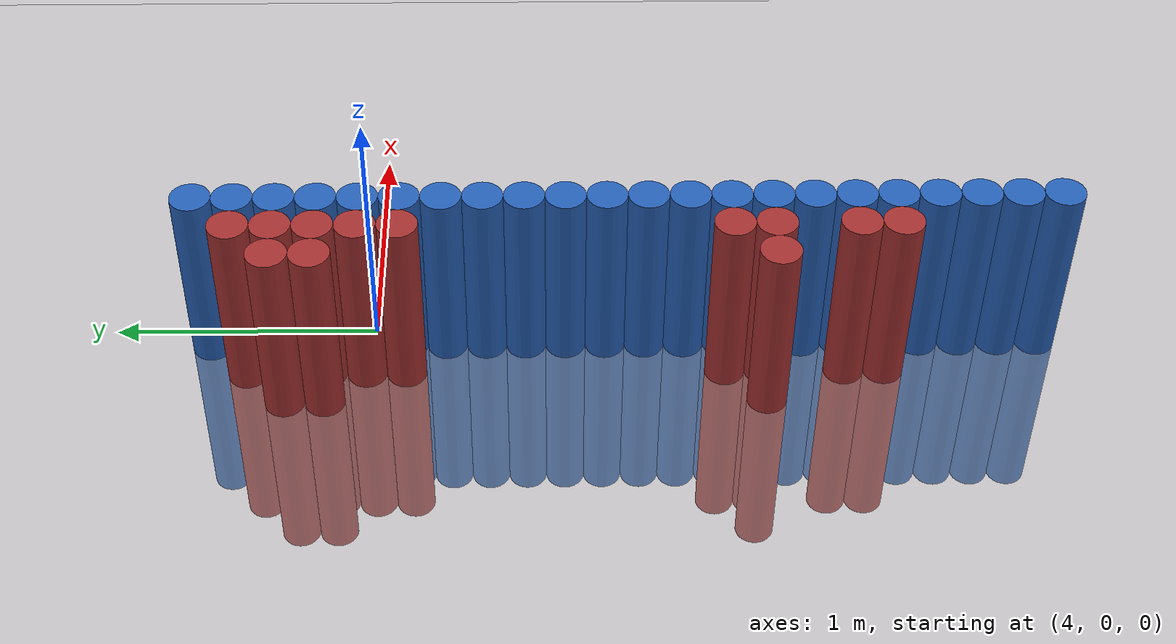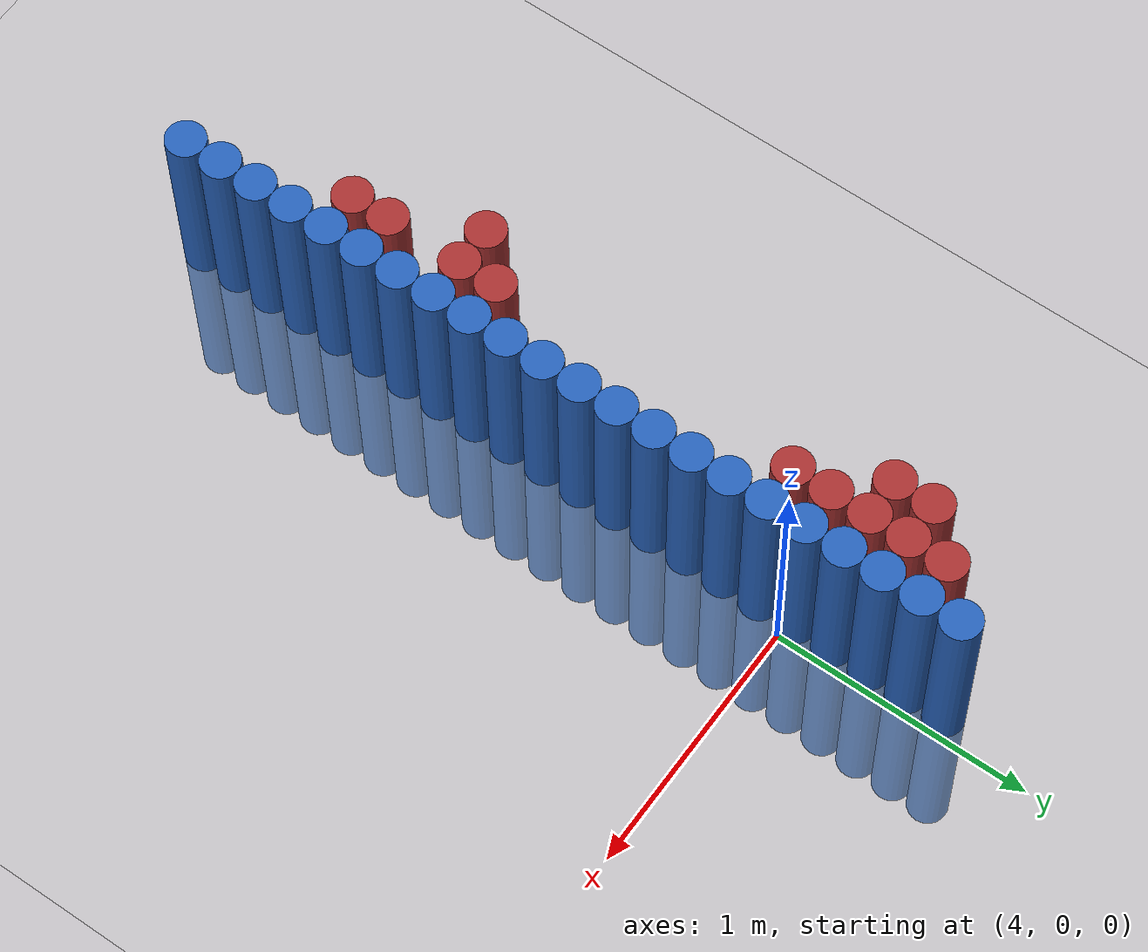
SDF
<sdf version="1.6">
 <world name="default">
  <model name="ground_plane">
   <static>1</static>
   <link name="link">
    <collision name="collision">
     <geometry><plane><normal>0 0 1</normal><size>100 100</size></plane></geometry>
     <surface><friction><ode><mu>100</mu><mu2>50</mu2></ode></friction></surface>
    </collision>
    <visual name="visual">
     <cast_shadows>0</cast_shadows>
     <geometry><plane><normal>0 0 1</normal><size>100 100</size></plane></geometry>
     <material>
      <script><uri>file://media/materials/scripts/gazebo.material</uri><name>Gazebo/Grey</name></script>
     </material>
    </visual>
   </link>
  </model>
  <model name="unit_cylinder_80">
   <static>1</static>
   <pose>3.925000 -2.525000 0.000000 0.000000 0.000000 0.000000</pose>
   <link name="link">
    <inertial>
     <mass>1</mass>
     <inertia><ixx>0.145833</ixx><ixy>0</ixy><ixz>0</ixz><iyy>0.145833</iyy><iyz>0</iyz><izz>0.125</izz></inertia>
    </inertial>
    <collision name="collision">
     <geometry><cylinder><radius>0.075000</radius><length>1.5</length></cylinder></geometry>
    </collision>
    <visual name="visual">
     <geometry><cylinder><radius>0.075000</radius><length>1.5</length></cylinder></geometry>
     <material>
      <ambient>0.152000 0.379000 0.720000 1</ambient>
      <diffuse>0.152000 0.379000 0.720000 1</diffuse>
     </material>
     <material>
      <script><name>Gazebo/Grey</name><uri>file://media/materials/scripts/gazebo.material</uri></script>
     </material>
    </visual>
   </link>
  </model>
  <model name="unit_cylinder_82">
   <static>1</static>
   <pose>3.925000 -2.375000 0.000000 0.000000 0.000000 0.000000</pose>
   <link name="link">
    <inertial>
     <mass>1</mass>
     <inertia><ixx>0.145833</ixx><ixy>0</ixy><ixz>0</ixz><iyy>0.145833</iyy><iyz>0</iyz><izz>0.125</izz></inertia>
    </inertial>
    <collision name="collision">
     <geometry><cylinder><radius>0.075000</radius><length>1.5</length></cylinder></geometry>
    </collision>
    <visual name="visual">
     <geometry><cylinder><radius>0.075000</radius><length>1.5</length></cylinder></geometry>
     <material>
      <ambient>0.152000 0.379000 0.720000 1</ambient>
      <diffuse>0.152000 0.379000 0.720000 1</diffuse>
     </material>
     <material>
      <script><name>Gazebo/Grey</name><uri>file://media/materials/scripts/gazebo.material</uri></script>
     </material>
    </visual>
   </link>
  </model>
  <model name="unit_cylinder_84">
   <static>1</static>
   <pose>3.925000 -2.225000 0.000000 0.000000 0.000000 0.000000</pose>
   <link name="link">
    <inertial>
     <mass>1</mass>
     <inertia><ixx>0.145833</ixx><ixy>0</ixy><ixz>0</ixz><iyy>0.145833</iyy><iyz>0</iyz><izz>0.125</izz></inertia>
    </inertial>
    <collision name="collision">
     <geometry><cylinder><radius>0.075000</radius><length>1.5</length></cylinder></geometry>
    </collision>
    <visual name="visual">
     <geometry><cylinder><radius>0.075000</radius><length>1.5</length></cylinder></geometry>
     <material>
      <ambient>0.152000 0.379000 0.720000 1</ambient>
      <diffuse>0.152000 0.379000 0.720000 1</diffuse>
     </material>
     <material>
      <script><name>Gazebo/Grey</name><uri>file://media/materials/scripts/gazebo.material</uri></script>
     </material>
    </visual>
   </link>
  </model>
  <model name="unit_cylinder_86">
   <static>1</static>
   <pose>3.925000 -2.075000 0.000000 0.000000 0.000000 0.000000</pose>
   <link name="link">
    <inertial>
     <mass>1</mass>
     <inertia><ixx>0.145833</ixx><ixy>0</ixy><ixz>0</ixz><iyy>0.145833</iyy><iyz>0</iyz><izz>0.125</izz></inertia>
    </inertial>
    <collision name="collision">
     <geometry><cylinder><radius>0.075000</radius><length>1.5</length></cylinder></geometry>
    </collision>
    <visual name="visual">
     <geometry><cylinder><radius>0.075000</radius><length>1.5</length></cylinder></geometry>
     <material>
      <ambient>0.152000 0.379000 0.720000 1</ambient>
      <diffuse>0.152000 0.379000 0.720000 1</diffuse>
     </material>
     <material>
      <script><name>Gazebo/Grey</name><uri>file://media/materials/scripts/gazebo.material</uri></script>
     </material>
    </visual>
   </link>
  </model>
  <model name="unit_cylinder_88">
   <static>1</static>
   <pose>3.925000 -1.925000 0.000000 0.000000 0.000000 0.000000</pose>
   <link name="link">
    <inertial>
     <mass>1</mass>
     <inertia><ixx>0.145833</ixx><ixy>0</ixy><ixz>0</ixz><iyy>0.145833</iyy><iyz>0</iyz><izz>0.125</izz></inertia>
    </inertial>
    <collision name="collision">
     <geometry><cylinder><radius>0.075000</radius><length>1.5</length></cylinder></geometry>
    </collision>
    <visual name="visual">
     <geometry><cylinder><radius>0.075000</radius><length>1.5</length></cylinder></geometry>
     <material>
      <ambient>0.152000 0.379000 0.720000 1</ambient>
      <diffuse>0.152000 0.379000 0.720000 1</diffuse>
     </material>
     <material>
      <script><name>Gazebo/Grey</name><uri>file://media/materials/scripts/gazebo.material</uri></script>
     </material>
    </visual>
   </link>
  </model>
  <model name="unit_cylinder_90">
   <static>1</static>
   <pose>3.925000 -1.775000 0.000000 0.000000 0.000000 0.000000</pose>
   <link name="link">
    <inertial>
     <mass>1</mass>
     <inertia><ixx>0.145833</ixx><ixy>0</ixy><ixz>0</ixz><iyy>0.145833</iyy><iyz>0</iyz><izz>0.125</izz></inertia>
    </inertial>
    <collision name="collision">
     <geometry><cylinder><radius>0.075000</radius><length>1.5</length></cylinder></geometry>
    </collision>
    <visual name="visual">
     <geometry><cylinder><radius>0.075000</radius><length>1.5</length></cylinder></geometry>
     <material>
      <ambient>0.152000 0.379000 0.720000 1</ambient>
      <diffuse>0.152000 0.379000 0.720000 1</diffuse>
     </material>
     <material>
      <script><name>Gazebo/Grey</name><uri>file://media/materials/scripts/gazebo.material</uri></script>
     </material>
    </visual>
   </link>
  </model>
  <model name="unit_cylinder_92">
   <static>1</static>
   <pose>3.925000 -1.625000 0.000000 0.000000 0.000000 0.000000</pose>
   <link name="link">
    <inertial>
     <mass>1</mass>
     <inertia><ixx>0.145833</ixx><ixy>0</ixy><ixz>0</ixz><iyy>0.145833</iyy><iyz>0</iyz><izz>0.125</izz></inertia>
    </inertial>
    <collision name="collision">
     <geometry><cylinder><radius>0.075000</radius><length>1.5</length></cylinder></geometry>
    </collision>
    <visual name="visual">
     <geometry><cylinder><radius>0.075000</radius><length>1.5</length></cylinder></geometry>
     <material>
      <ambient>0.152000 0.379000 0.720000 1</ambient>
      <diffuse>0.152000 0.379000 0.720000 1</diffuse>
     </material>
     <material>
      <script><name>Gazebo/Grey</name><uri>file://media/materials/scripts/gazebo.material</uri></script>
     </material>
    </visual>
   </link>
  </model>
  <model name="unit_cylinder_94">
   <static>1</static>
   <pose>3.925000 -1.475000 0.000000 0.000000 0.000000 0.000000</pose>
   <link name="link">
    <inertial>
     <mass>1</mass>
     <inertia><ixx>0.145833</ixx><ixy>0</ixy><ixz>0</ixz><iyy>0.145833</iyy><iyz>0</iyz><izz>0.125</izz></inertia>
    </inertial>
    <collision name="collision">
     <geometry><cylinder><radius>0.075000</radius><length>1.5</length></cylinder></geometry>
    </collision>
    <visual name="visual">
     <geometry><cylinder><radius>0.075000</radius><length>1.5</length></cylinder></geometry>
     <material>
      <ambient>0.152000 0.379000 0.720000 1</ambient>
      <diffuse>0.152000 0.379000 0.720000 1</diffuse>
     </material>
     <material>
      <script><name>Gazebo/Grey</name><uri>file://media/materials/scripts/gazebo.material</uri></script>
     </material>
    </visual>
   </link>
  </model>
  <model name="unit_cylinder_96">
   <static>1</static>
   <pose>3.925000 -1.325000 0.000000 0.000000 0.000000 0.000000</pose>
   <link name="link">
    <inertial>
     <mass>1</mass>
     <inertia><ixx>0.145833</ixx><ixy>0</ixy><ixz>0</ixz><iyy>0.145833</iyy><iyz>0</iyz><izz>0.125</izz></inertia>
    </inertial>
    <collision name="collision">
     <geometry><cylinder><radius>0.075000</radius><length>1.5</length></cylinder></geometry>
    </collision>
    <visual name="visual">
     <geometry><cylinder><radius>0.075000</radius><length>1.5</length></cylinder></geometry>
     <material>
      <ambient>0.152000 0.379000 0.720000 1</ambient>
      <diffuse>0.152000 0.379000 0.720000 1</diffuse>
     </material>
     <material>
      <script><name>Gazebo/Grey</name><uri>file://media/materials/scripts/gazebo.material</uri></script>
     </material>
    </visual>
   </link>
  </model>
  <model name="unit_cylinder_98">
   <static>1</static>
   <pose>3.925000 -1.175000 0.000000 0.000000 0.000000 0.000000</pose>
   <link name="link">
    <inertial>
     <mass>1</mass>
     <inertia><ixx>0.145833</ixx><ixy>0</ixy><ixz>0</ixz><iyy>0.145833</iyy><iyz>0</iyz><izz>0.125</izz></inertia>
    </inertial>
    <collision name="collision">
     <geometry><cylinder><radius>0.075000</radius><length>1.5</length></cylinder></geometry>
    </collision>
    <visual name="visual">
     <geometry><cylinder><radius>0.075000</radius><length>1.5</length></cylinder></geometry>
     <material>
      <ambient>0.152000 0.379000 0.720000 1</ambient>
      <diffuse>0.152000 0.379000 0.720000 1</diffuse>
     </material>
     <material>
      <script><name>Gazebo/Grey</name><uri>file://media/materials/scripts/gazebo.material</uri></script>
     </material>
    </visual>
   </link>
  </model>
  <model name="unit_cylinder_100">
   <static>1</static>
   <pose>3.925000 -1.025000 0.000000 0.000000 0.000000 0.000000</pose>
   <link name="link">
    <inertial>
     <mass>1</mass>
     <inertia><ixx>0.145833</ixx><ixy>0</ixy><ixz>0</ixz><iyy>0.145833</iyy><iyz>0</iyz><izz>0.125</izz></inertia>
    </inertial>
    <collision name="collision">
     <geometry><cylinder><radius>0.075000</radius><length>1.5</length></cylinder></geometry>
    </collision>
    <visual name="visual">
     <geometry><cylinder><radius>0.075000</radius><length>1.5</length></cylinder></geometry>
     <material>
      <ambient>0.152000 0.379000 0.720000 1</ambient>
      <diffuse>0.152000 0.379000 0.720000 1</diffuse>
     </material>
     <material>
      <script><name>Gazebo/Grey</name><uri>file://media/materials/scripts/gazebo.material</uri></script>
     </material>
    </visual>
   </link>
  </model>
  <model name="unit_cylinder_102">
   <static>1</static>
   <pose>3.925000 -0.875000 0.000000 0.000000 0.000000 0.000000</pose>
   <link name="link">
    <inertial>
     <mass>1</mass>
     <inertia><ixx>0.145833</ixx><ixy>0</ixy><ixz>0</ixz><iyy>0.145833</iyy><iyz>0</iyz><izz>0.125</izz></inertia>
    </inertial>
    <collision name="collision">
     <geometry><cylinder><radius>0.075000</radius><length>1.5</length></cylinder></geometry>
    </collision>
    <visual name="visual">
     <geometry><cylinder><radius>0.075000</radius><length>1.5</length></cylinder></geometry>
     <material>
      <ambient>0.152000 0.379000 0.720000 1</ambient>
      <diffuse>0.152000 0.379000 0.720000 1</diffuse>
     </material>
     <material>
      <script><name>Gazebo/Grey</name><uri>file://media/materials/scripts/gazebo.material</uri></script>
     </material>
    </visual>
   </link>
  </model>
  <model name="unit_cylinder_104">
   <static>1</static>
   <pose>3.925000 -0.725000 0.000000 0.000000 0.000000 0.000000</pose>
   <link name="link">
    <inertial>
     <mass>1</mass>
     <inertia><ixx>0.145833</ixx><ixy>0</ixy><ixz>0</ixz><iyy>0.145833</iyy><iyz>0</iyz><izz>0.125</izz></inertia>
    </inertial>
    <collision name="collision">
     <geometry><cylinder><radius>0.075000</radius><length>1.5</length></cylinder></geometry>
    </collision>
    <visual name="visual">
     <geometry><cylinder><radius>0.075000</radius><length>1.5</length></cylinder></geometry>
     <material>
      <ambient>0.152000 0.379000 0.720000 1</ambient>
      <diffuse>0.152000 0.379000 0.720000 1</diffuse>
     </material>
     <material>
      <script><name>Gazebo/Grey</name><uri>file://media/materials/scripts/gazebo.material</uri></script>
     </material>
    </visual>
   </link>
  </model>
  <model name="unit_cylinder_106">
   <static>1</static>
   <pose>3.925000 -0.575000 0.000000 0.000000 0.000000 0.000000</pose>
   <link name="link">
    <inertial>
     <mass>1</mass>
     <inertia><ixx>0.145833</ixx><ixy>0</ixy><ixz>0</ixz><iyy>0.145833</iyy><iyz>0</iyz><izz>0.125</izz></inertia>
    </inertial>
    <collision name="collision">
     <geometry><cylinder><radius>0.075000</radius><length>1.5</length></cylinder></geometry>
    </collision>
    <visual name="visual">
     <geometry><cylinder><radius>0.075000</radius><length>1.5</length></cylinder></geometry>
     <material>
      <ambient>0.152000 0.379000 0.720000 1</ambient>
      <diffuse>0.152000 0.379000 0.720000 1</diffuse>
     </material>
     <material>
      <script><name>Gazebo/Grey</name><uri>file://media/materials/scripts/gazebo.material</uri></script>
     </material>
    </visual>
   </link>
  </model>
  <model name="unit_cylinder_108">
   <static>1</static>
   <pose>3.925000 -0.425000 0.000000 0.000000 0.000000 0.000000</pose>
   <link name="link">
    <inertial>
     <mass>1</mass>
     <inertia><ixx>0.145833</ixx><ixy>0</ixy><ixz>0</ixz><iyy>0.145833</iyy><iyz>0</iyz><izz>0.125</izz></inertia>
    </inertial>
    <collision name="collision">
     <geometry><cylinder><radius>0.075000</radius><length>1.5</length></cylinder></geometry>
    </collision>
    <visual name="visual">
     <geometry><cylinder><radius>0.075000</radius><length>1.5</length></cylinder></geometry>
     <material>
      <ambient>0.152000 0.379000 0.720000 1</ambient>
      <diffuse>0.152000 0.379000 0.720000 1</diffuse>
     </material>
     <material>
      <script><name>Gazebo/Grey</name><uri>file://media/materials/scripts/gazebo.material</uri></script>
     </material>
    </visual>
   </link>
  </model>
  <model name="unit_cylinder_110">
   <static>1</static>
   <pose>3.925000 -0.275000 0.000000 0.000000 0.000000 0.000000</pose>
   <link name="link">
    <inertial>
     <mass>1</mass>
     <inertia><ixx>0.145833</ixx><ixy>0</ixy><ixz>0</ixz><iyy>0.145833</iyy><iyz>0</iyz><izz>0.125</izz></inertia>
    </inertial>
    <collision name="collision">
     <geometry><cylinder><radius>0.075000</radius><length>1.5</length></cylinder></geometry>
    </collision>
    <visual name="visual">
     <geometry><cylinder><radius>0.075000</radius><length>1.5</length></cylinder></geometry>
     <material>
      <ambient>0.152000 0.379000 0.720000 1</ambient>
      <diffuse>0.152000 0.379000 0.720000 1</diffuse>
     </material>
     <material>
      <script><name>Gazebo/Grey</name><uri>file://media/materials/scripts/gazebo.material</uri></script>
     </material>
    </visual>
   </link>
  </model>
  <model name="unit_cylinder_112">
   <static>1</static>
   <pose>3.925000 -0.125000 0.000000 0.000000 0.000000 0.000000</pose>
   <link name="link">
    <inertial>
     <mass>1</mass>
     <inertia><ixx>0.145833</ixx><ixy>0</ixy><ixz>0</ixz><iyy>0.145833</iyy><iyz>0</iyz><izz>0.125</izz></inertia>
    </inertial>
    <collision name="collision">
     <geometry><cylinder><radius>0.075000</radius><length>1.5</length></cylinder></geometry>
    </collision>
    <visual name="visual">
     <geometry><cylinder><radius>0.075000</radius><length>1.5</length></cylinder></geometry>
     <material>
      <ambient>0.152000 0.379000 0.720000 1</ambient>
      <diffuse>0.152000 0.379000 0.720000 1</diffuse>
     </material>
     <material>
      <script><name>Gazebo/Grey</name><uri>file://media/materials/scripts/gazebo.material</uri></script>
     </material>
    </visual>
   </link>
  </model>
  <model name="unit_cylinder_114">
   <static>1</static>
   <pose>3.925000 0.025000 0.000000 0.000000 0.000000 0.000000</pose>
   <link name="link">
    <inertial>
     <mass>1</mass>
     <inertia><ixx>0.145833</ixx><ixy>0</ixy><ixz>0</ixz><iyy>0.145833</iyy><iyz>0</iyz><izz>0.125</izz></inertia>
    </inertial>
    <collision name="collision">
     <geometry><cylinder><radius>0.075000</radius><length>1.5</length></cylinder></geometry>
    </collision>
    <visual name="visual">
     <geometry><cylinder><radius>0.075000</radius><length>1.5</length></cylinder></geometry>
     <material>
      <ambient>0.152000 0.379000 0.720000 1</ambient>
      <diffuse>0.152000 0.379000 0.720000 1</diffuse>
     </material>
     <material>
      <script><name>Gazebo/Grey</name><uri>file://media/materials/scripts/gazebo.material</uri></script>
     </material>
    </visual>
   </link>
  </model>
  <model name="unit_cylinder_116">
   <static>1</static>
   <pose>3.925000 0.175000 0.000000 0.000000 0.000000 0.000000</pose>
   <link name="link">
    <inertial>
     <mass>1</mass>
     <inertia><ixx>0.145833</ixx><ixy>0</ixy><ixz>0</ixz><iyy>0.145833</iyy><iyz>0</iyz><izz>0.125</izz></inertia>
    </inertial>
    <collision name="collision">
     <geometry><cylinder><radius>0.075000</radius><length>1.5</length></cylinder></geometry>
    </collision>
    <visual name="visual">
     <geometry><cylinder><radius>0.075000</radius><length>1.5</length></cylinder></geometry>
     <material>
      <ambient>0.152000 0.379000 0.720000 1</ambient>
      <diffuse>0.152000 0.379000 0.720000 1</diffuse>
     </material>
     <material>
      <script><name>Gazebo/Grey</name><uri>file://media/materials/scripts/gazebo.material</uri></script>
     </material>
    </visual>
   </link>
  </model>
  <model name="unit_cylinder_118">
   <static>1</static>
   <pose>3.925000 0.325000 0.000000 0.000000 0.000000 0.000000</pose>
   <link name="link">
    <inertial>
     <mass>1</mass>
     <inertia><ixx>0.145833</ixx><ixy>0</ixy><ixz>0</ixz><iyy>0.145833</iyy><iyz>0</iyz><izz>0.125</izz></inertia>
    </inertial>
    <collision name="collision">
     <geometry><cylinder><radius>0.075000</radius><length>1.5</length></cylinder></geometry>
    </collision>
    <visual name="visual">
     <geometry><cylinder><radius>0.075000</radius><length>1.5</length></cylinder></geometry>
     <material>
      <ambient>0.152000 0.379000 0.720000 1</ambient>
      <diffuse>0.152000 0.379000 0.720000 1</diffuse>
     </material>
     <material>
      <script><name>Gazebo/Grey</name><uri>file://media/materials/scripts/gazebo.material</uri></script>
     </material>
    </visual>
   </link>
  </model>
  <model name="unit_cylinder_120">
   <static>1</static>
   <pose>3.925000 0.475000 0.000000 0.000000 0.000000 0.000000</pose>
   <link name="link">
    <inertial>
     <mass>1</mass>
     <inertia><ixx>0.145833</ixx><ixy>0</ixy><ixz>0</ixz><iyy>0.145833</iyy><iyz>0</iyz><izz>0.125</izz></inertia>
    </inertial>
    <collision name="collision">
     <geometry><cylinder><radius>0.075000</radius><length>1.5</length></cylinder></geometry>
    </collision>
    <visual name="visual">
     <geometry><cylinder><radius>0.075000</radius><length>1.5</length></cylinder></geometry>
     <material>
      <ambient>0.152000 0.379000 0.720000 1</ambient>
      <diffuse>0.152000 0.379000 0.720000 1</diffuse>
     </material>
     <material>
      <script><name>Gazebo/Grey</name><uri>file://media/materials/scripts/gazebo.material</uri></script>
     </material>
    </visual>
   </link>
  </model>
  <model name="unit_cylinder_122">
   <static>1</static>
   <pose>3.925000 0.625000 0.000000 0.000000 0.000000 0.000000</pose>
   <link name="link">
    <inertial>
     <mass>1</mass>
     <inertia><ixx>0.145833</ixx><ixy>0</ixy><ixz>0</ixz><iyy>0.145833</iyy><iyz>0</iyz><izz>0.125</izz></inertia>
    </inertial>
    <collision name="collision">
     <geometry><cylinder><radius>0.075000</radius><length>1.5</length></cylinder></geometry>
    </collision>
    <visual name="visual">
     <geometry><cylinder><radius>0.075000</radius><length>1.5</length></cylinder></geometry>
     <material>
      <ambient>0.152000 0.379000 0.720000 1</ambient>
      <diffuse>0.152000 0.379000 0.720000 1</diffuse>
     </material>
     <material>
      <script><name>Gazebo/Grey</name><uri>file://media/materials/scripts/gazebo.material</uri></script>
     </material>
    </visual>
   </link>
  </model>
  <model name="unit_cylinder_477">
   <static>1</static>
   <pose>3.625000 -1.475000 0.000000 0.000000 0.000000 0.000000</pose>
   <link name="link">
    <inertial>
     <mass>1</mass>
     <inertia><ixx>0.145833</ixx><ixy>0</ixy><ixz>0</ixz><iyy>0.145833</iyy><iyz>0</iyz><izz>0.125</izz></inertia>
    </inertial>
    <collision name="collision">
     <geometry><cylinder><radius>0.075000</radius><length>1.5</length></cylinder></geometry>
    </collision>
    <visual name="visual">
     <geometry><cylinder><radius>0.075000</radius><length>1.5</length></cylinder></geometry>
     <material>
      <ambient>0.648000 0.192000 0.192000 1</ambient>
      <diffuse>0.648000 0.192000 0.192000 1</diffuse>
     </material>
     <material>
      <script><name>Gazebo/Grey</name><uri>file://media/materials/scripts/gazebo.material</uri></script>
     </material>
    </visual>
   </link>
  </model>
  <model name="unit_cylinder_478">
   <static>1</static>
   <pose>3.625000 0.175000 0.000000 0.000000 0.000000 0.000000</pose>
   <link name="link">
    <inertial>
     <mass>1</mass>
     <inertia><ixx>0.145833</ixx><ixy>0</ixy><ixz>0</ixz><iyy>0.145833</iyy><iyz>0</iyz><izz>0.125</izz></inertia>
    </inertial>
    <collision name="collision">
     <geometry><cylinder><radius>0.075000</radius><length>1.5</length></cylinder></geometry>
    </collision>
    <visual name="visual">
     <geometry><cylinder><radius>0.075000</radius><length>1.5</length></cylinder></geometry>
     <material>
      <ambient>0.648000 0.192000 0.192000 1</ambient>
      <diffuse>0.648000 0.192000 0.192000 1</diffuse>
     </material>
     <material>
      <script><name>Gazebo/Grey</name><uri>file://media/materials/scripts/gazebo.material</uri></script>
     </material>
    </visual>
   </link>
  </model>
  <model name="unit_cylinder_479">
   <static>1</static>
   <pose>3.625000 0.325000 0.000000 0.000000 0.000000 0.000000</pose>
   <link name="link">
    <inertial>
     <mass>1</mass>
     <inertia><ixx>0.145833</ixx><ixy>0</ixy><ixz>0</ixz><iyy>0.145833</iyy><iyz>0</iyz><izz>0.125</izz></inertia>
    </inertial>
    <collision name="collision">
     <geometry><cylinder><radius>0.075000</radius><length>1.5</length></cylinder></geometry>
    </collision>
    <visual name="visual">
     <geometry><cylinder><radius>0.075000</radius><length>1.5</length></cylinder></geometry>
     <material>
      <ambient>0.648000 0.192000 0.192000 1</ambient>
      <diffuse>0.648000 0.192000 0.192000 1</diffuse>
     </material>
     <material>
      <script><name>Gazebo/Grey</name><uri>file://media/materials/scripts/gazebo.material</uri></script>
     </material>
    </visual>
   </link>
  </model>
  <model name="unit_cylinder_481">
   <static>1</static>
   <pose>3.775000 -1.925000 0.000000 0.000000 0.000000 0.000000</pose>
   <link name="link">
    <inertial>
     <mass>1</mass>
     <inertia><ixx>0.145833</ixx><ixy>0</ixy><ixz>0</ixz><iyy>0.145833</iyy><iyz>0</iyz><izz>0.125</izz></inertia>
    </inertial>
    <collision name="collision">
     <geometry><cylinder><radius>0.075000</radius><length>1.5</length></cylinder></geometry>
    </collision>
    <visual name="visual">
     <geometry><cylinder><radius>0.075000</radius><length>1.5</length></cylinder></geometry>
     <material>
      <ambient>0.648000 0.192000 0.192000 1</ambient>
      <diffuse>0.648000 0.192000 0.192000 1</diffuse>
     </material>
     <material>
      <script><name>Gazebo/Grey</name><uri>file://media/materials/scripts/gazebo.material</uri></script>
     </material>
    </visual>
   </link>
  </model>
  <model name="unit_cylinder_482">
   <static>1</static>
   <pose>3.775000 -1.775000 0.000000 0.000000 0.000000 0.000000</pose>
   <link name="link">
    <inertial>
     <mass>1</mass>
     <inertia><ixx>0.145833</ixx><ixy>0</ixy><ixz>0</ixz><iyy>0.145833</iyy><iyz>0</iyz><izz>0.125</izz></inertia>
    </inertial>
    <collision name="collision">
     <geometry><cylinder><radius>0.075000</radius><length>1.5</length></cylinder></geometry>
    </collision>
    <visual name="visual">
     <geometry><cylinder><radius>0.075000</radius><length>1.5</length></cylinder></geometry>
     <material>
      <ambient>0.648000 0.192000 0.192000 1</ambient>
      <diffuse>0.648000 0.192000 0.192000 1</diffuse>
     </material>
     <material>
      <script><name>Gazebo/Grey</name><uri>file://media/materials/scripts/gazebo.material</uri></script>
     </material>
    </visual>
   </link>
  </model>
  <model name="unit_cylinder_483">
   <static>1</static>
   <pose>3.775000 -1.475000 0.000000 0.000000 0.000000 0.000000</pose>
   <link name="link">
    <inertial>
     <mass>1</mass>
     <inertia><ixx>0.145833</ixx><ixy>0</ixy><ixz>0</ixz><iyy>0.145833</iyy><iyz>0</iyz><izz>0.125</izz></inertia>
    </inertial>
    <collision name="collision">
     <geometry><cylinder><radius>0.075000</radius><length>1.5</length></cylinder></geometry>
    </collision>
    <visual name="visual">
     <geometry><cylinder><radius>0.075000</radius><length>1.5</length></cylinder></geometry>
     <material>
      <ambient>0.648000 0.192000 0.192000 1</ambient>
      <diffuse>0.648000 0.192000 0.192000 1</diffuse>
     </material>
     <material>
      <script><name>Gazebo/Grey</name><uri>file://media/materials/scripts/gazebo.material</uri></script>
     </material>
    </visual>
   </link>
  </model>
  <model name="unit_cylinder_484">
   <static>1</static>
   <pose>3.775000 -1.325000 0.000000 0.000000 0.000000 0.000000</pose>
   <link name="link">
    <inertial>
     <mass>1</mass>
     <inertia><ixx>0.145833</ixx><ixy>0</ixy><ixz>0</ixz><iyy>0.145833</iyy><iyz>0</iyz><izz>0.125</izz></inertia>
    </inertial>
    <collision name="collision">
     <geometry><cylinder><radius>0.075000</radius><length>1.5</length></cylinder></geometry>
    </collision>
    <visual name="visual">
     <geometry><cylinder><radius>0.075000</radius><length>1.5</length></cylinder></geometry>
     <material>
      <ambient>0.648000 0.192000 0.192000 1</ambient>
      <diffuse>0.648000 0.192000 0.192000 1</diffuse>
     </material>
     <material>
      <script><name>Gazebo/Grey</name><uri>file://media/materials/scripts/gazebo.material</uri></script>
     </material>
    </visual>
   </link>
  </model>
  <model name="unit_cylinder_485">
   <static>1</static>
   <pose>3.775000 -0.125000 0.000000 0.000000 0.000000 0.000000</pose>
   <link name="link">
    <inertial>
     <mass>1</mass>
     <inertia><ixx>0.145833</ixx><ixy>0</ixy><ixz>0</ixz><iyy>0.145833</iyy><iyz>0</iyz><izz>0.125</izz></inertia>
    </inertial>
    <collision name="collision">
     <geometry><cylinder><radius>0.075000</radius><length>1.5</length></cylinder></geometry>
    </collision>
    <visual name="visual">
     <geometry><cylinder><radius>0.075000</radius><length>1.5</length></cylinder></geometry>
     <material>
      <ambient>0.648000 0.192000 0.192000 1</ambient>
      <diffuse>0.648000 0.192000 0.192000 1</diffuse>
     </material>
     <material>
      <script><name>Gazebo/Grey</name><uri>file://media/materials/scripts/gazebo.material</uri></script>
     </material>
    </visual>
   </link>
  </model>
  <model name="unit_cylinder_486">
   <static>1</static>
   <pose>3.775000 0.025000 0.000000 0.000000 0.000000 0.000000</pose>
   <link name="link">
    <inertial>
     <mass>1</mass>
     <inertia><ixx>0.145833</ixx><ixy>0</ixy><ixz>0</ixz><iyy>0.145833</iyy><iyz>0</iyz><izz>0.125</izz></inertia>
    </inertial>
    <collision name="collision">
     <geometry><cylinder><radius>0.075000</radius><length>1.5</length></cylinder></geometry>
    </collision>
    <visual name="visual">
     <geometry><cylinder><radius>0.075000</radius><length>1.5</length></cylinder></geometry>
     <material>
      <ambient>0.648000 0.192000 0.192000 1</ambient>
      <diffuse>0.648000 0.192000 0.192000 1</diffuse>
     </material>
     <material>
      <script><name>Gazebo/Grey</name><uri>file://media/materials/scripts/gazebo.material</uri></script>
     </material>
    </visual>
   </link>
  </model>
  <model name="unit_cylinder_487">
   <static>1</static>
   <pose>3.775000 0.175000 0.000000 0.000000 0.000000 0.000000</pose>
   <link name="link">
    <inertial>
     <mass>1</mass>
     <inertia><ixx>0.145833</ixx><ixy>0</ixy><ixz>0</ixz><iyy>0.145833</iyy><iyz>0</iyz><izz>0.125</izz></inertia>
    </inertial>
    <collision name="collision">
     <geometry><cylinder><radius>0.075000</radius><length>1.5</length></cylinder></geometry>
    </collision>
    <visual name="visual">
     <geometry><cylinder><radius>0.075000</radius><length>1.5</length></cylinder></geometry>
     <material>
      <ambient>0.648000 0.192000 0.192000 1</ambient>
      <diffuse>0.648000 0.192000 0.192000 1</diffuse>
     </material>
     <material>
      <script><name>Gazebo/Grey</name><uri>file://media/materials/scripts/gazebo.material</uri></script>
     </material>
    </visual>
   </link>
  </model>
  <model name="unit_cylinder_488">
   <static>1</static>
   <pose>3.775000 0.325000 0.000000 0.000000 0.000000 0.000000</pose>
   <link name="link">
    <inertial>
     <mass>1</mass>
     <inertia><ixx>0.145833</ixx><ixy>0</ixy><ixz>0</ixz><iyy>0.145833</iyy><iyz>0</iyz><izz>0.125</izz></inertia>
    </inertial>
    <collision name="collision">
     <geometry><cylinder><radius>0.075000</radius><length>1.5</length></cylinder></geometry>
    </collision>
    <visual name="visual">
     <geometry><cylinder><radius>0.075000</radius><length>1.5</length></cylinder></geometry>
     <material>
      <ambient>0.648000 0.192000 0.192000 1</ambient>
      <diffuse>0.648000 0.192000 0.192000 1</diffuse>
     </material>
     <material>
      <script><name>Gazebo/Grey</name><uri>file://media/materials/scripts/gazebo.material</uri></script>
     </material>
    </visual>
   </link>
  </model>
  <model name="unit_cylinder_489">
   <static>1</static>
   <pose>3.775000 0.475000 0.000000 0.000000 0.000000 0.000000</pose>
   <link name="link">
    <inertial>
     <mass>1</mass>
     <inertia><ixx>0.145833</ixx><ixy>0</ixy><ixz>0</ixz><iyy>0.145833</iyy><iyz>0</iyz><izz>0.125</izz></inertia>
    </inertial>
    <collision name="collision">
     <geometry><cylinder><radius>0.075000</radius><length>1.5</length></cylinder></geometry>
    </collision>
    <visual name="visual">
     <geometry><cylinder><radius>0.075000</radius><length>1.5</length></cylinder></geometry>
     <material>
      <ambient>0.648000 0.192000 0.192000 1</ambient>
      <diffuse>0.648000 0.192000 0.192000 1</diffuse>
     </material>
     <material>
      <script><name>Gazebo/Grey</name><uri>file://media/materials/scripts/gazebo.material</uri></script>
     </material>
    </visual>
   </link>
  </model>
  <model name="unit_cylinder_508">
   <static>1</static>
   <pose>3.925000 -1.925000 0.000000 0.000000 0.000000 0.000000</pose>
   <link name="link">
    <inertial>
     <mass>1</mass>
     <inertia><ixx>0.145833</ixx><ixy>0</ixy><ixz>0</ixz><iyy>0.145833</iyy><iyz>0</iyz><izz>0.125</izz></inertia>
    </inertial>
    <collision name="collision">
     <geometry><cylinder><radius>0.075000</radius><length>1.5</length></cylinder></geometry>
    </collision>
    <visual name="visual">
     <geometry><cylinder><radius>0.075000</radius><length>1.5</length></cylinder></geometry>
     <material>
      <ambient>0.152000 0.379000 0.720000 1</ambient>
      <diffuse>0.152000 0.379000 0.720000 1</diffuse>
     </material>
     <material>
      <script><name>Gazebo/Grey</name><uri>file://media/materials/scripts/gazebo.material</uri></script>
     </material>
    </visual>
   </link>
  </model>
  <model name="unit_cylinder_509">
   <static>1</static>
   <pose>3.925000 -1.775000 0.000000 0.000000 0.000000 0.000000</pose>
   <link name="link">
    <inertial>
     <mass>1</mass>
     <inertia><ixx>0.145833</ixx><ixy>0</ixy><ixz>0</ixz><iyy>0.145833</iyy><iyz>0</iyz><izz>0.125</izz></inertia>
    </inertial>
    <collision name="collision">
     <geometry><cylinder><radius>0.075000</radius><length>1.5</length></cylinder></geometry>
    </collision>
    <visual name="visual">
     <geometry><cylinder><radius>0.075000</radius><length>1.5</length></cylinder></geometry>
     <material>
      <ambient>0.152000 0.379000 0.720000 1</ambient>
      <diffuse>0.152000 0.379000 0.720000 1</diffuse>
     </material>
     <material>
      <script><name>Gazebo/Grey</name><uri>file://media/materials/scripts/gazebo.material</uri></script>
     </material>
    </visual>
   </link>
  </model>
  <model name="unit_cylinder_510">
   <static>1</static>
   <pose>3.925000 -1.625000 0.000000 0.000000 0.000000 0.000000</pose>
   <link name="link">
    <inertial>
     <mass>1</mass>
     <inertia><ixx>0.145833</ixx><ixy>0</ixy><ixz>0</ixz><iyy>0.145833</iyy><iyz>0</iyz><izz>0.125</izz></inertia>
    </inertial>
    <collision name="collision">
     <geometry><cylinder><radius>0.075000</radius><length>1.5</length></cylinder></geometry>
    </collision>
    <visual name="visual">
     <geometry><cylinder><radius>0.075000</radius><length>1.5</length></cylinder></geometry>
     <material>
      <ambient>0.152000 0.379000 0.720000 1</ambient>
      <diffuse>0.152000 0.379000 0.720000 1</diffuse>
     </material>
     <material>
      <script><name>Gazebo/Grey</name><uri>file://media/materials/scripts/gazebo.material</uri></script>
     </material>
    </visual>
   </link>
  </model>
  <model name="unit_cylinder_511">
   <static>1</static>
   <pose>3.925000 -1.475000 0.000000 0.000000 0.000000 0.000000</pose>
   <link name="link">
    <inertial>
     <mass>1</mass>
     <inertia><ixx>0.145833</ixx><ixy>0</ixy><ixz>0</ixz><iyy>0.145833</iyy><iyz>0</iyz><izz>0.125</izz></inertia>
    </inertial>
    <collision name="collision">
     <geometry><cylinder><radius>0.075000</radius><length>1.5</length></cylinder></geometry>
    </collision>
    <visual name="visual">
     <geometry><cylinder><radius>0.075000</radius><length>1.5</length></cylinder></geometry>
     <material>
      <ambient>0.152000 0.379000 0.720000 1</ambient>
      <diffuse>0.152000 0.379000 0.720000 1</diffuse>
     </material>
     <material>
      <script><name>Gazebo/Grey</name><uri>file://media/materials/scripts/gazebo.material</uri></script>
     </material>
    </visual>
   </link>
  </model>
  <model name="unit_cylinder_512">
   <static>1</static>
   <pose>3.925000 -1.325000 0.000000 0.000000 0.000000 0.000000</pose>
   <link name="link">
    <inertial>
     <mass>1</mass>
     <inertia><ixx>0.145833</ixx><ixy>0</ixy><ixz>0</ixz><iyy>0.145833</iyy><iyz>0</iyz><izz>0.125</izz></inertia>
    </inertial>
    <collision name="collision">
     <geometry><cylinder><radius>0.075000</radius><length>1.5</length></cylinder></geometry>
    </collision>
    <visual name="visual">
     <geometry><cylinder><radius>0.075000</radius><length>1.5</length></cylinder></geometry>
     <material>
      <ambient>0.152000 0.379000 0.720000 1</ambient>
      <diffuse>0.152000 0.379000 0.720000 1</diffuse>
     </material>
     <material>
      <script><name>Gazebo/Grey</name><uri>file://media/materials/scripts/gazebo.material</uri></script>
     </material>
    </visual>
   </link>
  </model>
  <model name="unit_cylinder_513">
   <static>1</static>
   <pose>3.925000 -1.175000 0.000000 0.000000 0.000000 0.000000</pose>
   <link name="link">
    <inertial>
     <mass>1</mass>
     <inertia><ixx>0.145833</ixx><ixy>0</ixy><ixz>0</ixz><iyy>0.145833</iyy><iyz>0</iyz><izz>0.125</izz></inertia>
    </inertial>
    <collision name="collision">
     <geometry><cylinder><radius>0.075000</radius><length>1.5</length></cylinder></geometry>
    </collision>
    <visual name="visual">
     <geometry><cylinder><radius>0.075000</radius><length>1.5</length></cylinder></geometry>
     <material>
      <ambient>0.152000 0.379000 0.720000 1</ambient>
      <diffuse>0.152000 0.379000 0.720000 1</diffuse>
     </material>
     <material>
      <script><name>Gazebo/Grey</name><uri>file://media/materials/scripts/gazebo.material</uri></script>
     </material>
    </visual>
   </link>
  </model>
  <model name="unit_cylinder_514">
   <static>1</static>
   <pose>3.925000 -1.025000 0.000000 0.000000 0.000000 0.000000</pose>
   <link name="link">
    <inertial>
     <mass>1</mass>
     <inertia><ixx>0.145833</ixx><ixy>0</ixy><ixz>0</ixz><iyy>0.145833</iyy><iyz>0</iyz><izz>0.125</izz></inertia>
    </inertial>
    <collision name="collision">
     <geometry><cylinder><radius>0.075000</radius><length>1.5</length></cylinder></geometry>
    </collision>
    <visual name="visual">
     <geometry><cylinder><radius>0.075000</radius><length>1.5</length></cylinder></geometry>
     <material>
      <ambient>0.152000 0.379000 0.720000 1</ambient>
      <diffuse>0.152000 0.379000 0.720000 1</diffuse>
     </material>
     <material>
      <script><name>Gazebo/Grey</name><uri>file://media/materials/scripts/gazebo.material</uri></script>
     </material>
    </visual>
   </link>
  </model>
  <model name="unit_cylinder_515">
   <static>1</static>
   <pose>3.925000 -0.875000 0.000000 0.000000 0.000000 0.000000</pose>
   <link name="link">
    <inertial>
     <mass>1</mass>
     <inertia><ixx>0.145833</ixx><ixy>0</ixy><ixz>0</ixz><iyy>0.145833</iyy><iyz>0</iyz><izz>0.125</izz></inertia>
    </inertial>
    <collision name="collision">
     <geometry><cylinder><radius>0.075000</radius><length>1.5</length></cylinder></geometry>
    </collision>
    <visual name="visual">
     <geometry><cylinder><radius>0.075000</radius><length>1.5</length></cylinder></geometry>
     <material>
      <ambient>0.152000 0.379000 0.720000 1</ambient>
      <diffuse>0.152000 0.379000 0.720000 1</diffuse>
     </material>
     <material>
      <script><name>Gazebo/Grey</name><uri>file://media/materials/scripts/gazebo.material</uri></script>
     </material>
    </visual>
   </link>
  </model>
  <model name="unit_cylinder_516">
   <static>1</static>
   <pose>3.925000 -0.725000 0.000000 0.000000 0.000000 0.000000</pose>
   <link name="link">
    <inertial>
     <mass>1</mass>
     <inertia><ixx>0.145833</ixx><ixy>0</ixy><ixz>0</ixz><iyy>0.145833</iyy><iyz>0</iyz><izz>0.125</izz></inertia>
    </inertial>
    <collision name="collision">
     <geometry><cylinder><radius>0.075000</radius><length>1.5</length></cylinder></geometry>
    </collision>
    <visual name="visual">
     <geometry><cylinder><radius>0.075000</radius><length>1.5</length></cylinder></geometry>
     <material>
      <ambient>0.152000 0.379000 0.720000 1</ambient>
      <diffuse>0.152000 0.379000 0.720000 1</diffuse>
     </material>
     <material>
      <script><name>Gazebo/Grey</name><uri>file://media/materials/scripts/gazebo.material</uri></script>
     </material>
    </visual>
   </link>
  </model>
  <model name="unit_cylinder_517">
   <static>1</static>
   <pose>3.925000 -0.575000 0.000000 0.000000 0.000000 0.000000</pose>
   <link name="link">
    <inertial>
     <mass>1</mass>
     <inertia><ixx>0.145833</ixx><ixy>0</ixy><ixz>0</ixz><iyy>0.145833</iyy><iyz>0</iyz><izz>0.125</izz></inertia>
    </inertial>
    <collision name="collision">
     <geometry><cylinder><radius>0.075000</radius><length>1.5</length></cylinder></geometry>
    </collision>
    <visual name="visual">
     <geometry><cylinder><radius>0.075000</radius><length>1.5</length></cylinder></geometry>
     <material>
      <ambient>0.152000 0.379000 0.720000 1</ambient>
      <diffuse>0.152000 0.379000 0.720000 1</diffuse>
     </material>
     <material>
      <script><name>Gazebo/Grey</name><uri>file://media/materials/scripts/gazebo.material</uri></script>
     </material>
    </visual>
   </link>
  </model>
  <model name="unit_cylinder_518">
   <static>1</static>
   <pose>3.925000 -0.425000 0.000000 0.000000 0.000000 0.000000</pose>
   <link name="link">
    <inertial>
     <mass>1</mass>
     <inertia><ixx>0.145833</ixx><ixy>0</ixy><ixz>0</ixz><iyy>0.145833</iyy><iyz>0</iyz><izz>0.125</izz></inertia>
    </inertial>
    <collision name="collision">
     <geometry><cylinder><radius>0.075000</radius><length>1.5</length></cylinder></geometry>
    </collision>
    <visual name="visual">
     <geometry><cylinder><radius>0.075000</radius><length>1.5</length></cylinder></geometry>
     <material>
      <ambient>0.152000 0.379000 0.720000 1</ambient>
      <diffuse>0.152000 0.379000 0.720000 1</diffuse>
     </material>
     <material>
      <script><name>Gazebo/Grey</name><uri>file://media/materials/scripts/gazebo.material</uri></script>
     </material>
    </visual>
   </link>
  </model>
  <model name="unit_cylinder_519">
   <static>1</static>
   <pose>3.925000 -0.275000 0.000000 0.000000 0.000000 0.000000</pose>
   <link name="link">
    <inertial>
     <mass>1</mass>
     <inertia><ixx>0.145833</ixx><ixy>0</ixy><ixz>0</ixz><iyy>0.145833</iyy><iyz>0</iyz><izz>0.125</izz></inertia>
    </inertial>
    <collision name="collision">
     <geometry><cylinder><radius>0.075000</radius><length>1.5</length></cylinder></geometry>
    </collision>
    <visual name="visual">
     <geometry><cylinder><radius>0.075000</radius><length>1.5</length></cylinder></geometry>
     <material>
      <ambient>0.152000 0.379000 0.720000 1</ambient>
      <diffuse>0.152000 0.379000 0.720000 1</diffuse>
     </material>
     <material>
      <script><name>Gazebo/Grey</name><uri>file://media/materials/scripts/gazebo.material</uri></script>
     </material>
    </visual>
   </link>
  </model>
  <model name="unit_cylinder_520">
   <static>1</static>
   <pose>3.925000 -0.125000 0.000000 0.000000 0.000000 0.000000</pose>
   <link name="link">
    <inertial>
     <mass>1</mass>
     <inertia><ixx>0.145833</ixx><ixy>0</ixy><ixz>0</ixz><iyy>0.145833</iyy><iyz>0</iyz><izz>0.125</izz></inertia>
    </inertial>
    <collision name="collision">
     <geometry><cylinder><radius>0.075000</radius><length>1.5</length></cylinder></geometry>
    </collision>
    <visual name="visual">
     <geometry><cylinder><radius>0.075000</radius><length>1.5</length></cylinder></geometry>
     <material>
      <ambient>0.152000 0.379000 0.720000 1</ambient>
      <diffuse>0.152000 0.379000 0.720000 1</diffuse>
     </material>
     <material>
      <script><name>Gazebo/Grey</name><uri>file://media/materials/scripts/gazebo.material</uri></script>
     </material>
    </visual>
   </link>
  </model>
  <model name="unit_cylinder_521">
   <static>1</static>
   <pose>3.925000 0.025000 0.000000 0.000000 0.000000 0.000000</pose>
   <link name="link">
    <inertial>
     <mass>1</mass>
     <inertia><ixx>0.145833</ixx><ixy>0</ixy><ixz>0</ixz><iyy>0.145833</iyy><iyz>0</iyz><izz>0.125</izz></inertia>
    </inertial>
    <collision name="collision">
     <geometry><cylinder><radius>0.075000</radius><length>1.5</length></cylinder></geometry>
    </collision>
    <visual name="visual">
     <geometry><cylinder><radius>0.075000</radius><length>1.5</length></cylinder></geometry>
     <material>
      <ambient>0.152000 0.379000 0.720000 1</ambient>
      <diffuse>0.152000 0.379000 0.720000 1</diffuse>
     </material>
     <material>
      <script><name>Gazebo/Grey</name><uri>file://media/materials/scripts/gazebo.material</uri></script>
     </material>
    </visual>
   </link>
  </model>
  <model name="unit_cylinder_522">
   <static>1</static>
   <pose>3.925000 0.175000 0.000000 0.000000 0.000000 0.000000</pose>
   <link name="link">
    <inertial>
     <mass>1</mass>
     <inertia><ixx>0.145833</ixx><ixy>0</ixy><ixz>0</ixz><iyy>0.145833</iyy><iyz>0</iyz><izz>0.125</izz></inertia>
    </inertial>
    <collision name="collision">
     <geometry><cylinder><radius>0.075000</radius><length>1.5</length></cylinder></geometry>
    </collision>
    <visual name="visual">
     <geometry><cylinder><radius>0.075000</radius><length>1.5</length></cylinder></geometry>
     <material>
      <ambient>0.152000 0.379000 0.720000 1</ambient>
      <diffuse>0.152000 0.379000 0.720000 1</diffuse>
     </material>
     <material>
      <script><name>Gazebo/Grey</name><uri>file://media/materials/scripts/gazebo.material</uri></script>
     </material>
    </visual>
   </link>
  </model>
  <model name="unit_cylinder_523">
   <static>1</static>
   <pose>3.925000 0.325000 0.000000 0.000000 0.000000 0.000000</pose>
   <link name="link">
    <inertial>
     <mass>1</mass>
     <inertia><ixx>0.145833</ixx><ixy>0</ixy><ixz>0</ixz><iyy>0.145833</iyy><iyz>0</iyz><izz>0.125</izz></inertia>
    </inertial>
    <collision name="collision">
     <geometry><cylinder><radius>0.075000</radius><length>1.5</length></cylinder></geometry>
    </collision>
    <visual name="visual">
     <geometry><cylinder><radius>0.075000</radius><length>1.5</length></cylinder></geometry>
     <material>
      <ambient>0.152000 0.379000 0.720000 1</ambient>
      <diffuse>0.152000 0.379000 0.720000 1</diffuse>
     </material>
     <material>
      <script><name>Gazebo/Grey</name><uri>file://media/materials/scripts/gazebo.material</uri></script>
     </material>
    </visual>
   </link>
  </model>
  <model name="unit_cylinder_524">
   <static>1</static>
   <pose>3.925000 0.475000 0.000000 0.000000 0.000000 0.000000</pose>
   <link name="link">
    <inertial>
     <mass>1</mass>
     <inertia><ixx>0.145833</ixx><ixy>0</ixy><ixz>0</ixz><iyy>0.145833</iyy><iyz>0</iyz><izz>0.125</izz></inertia>
    </inertial>
    <collision name="collision">
     <geometry><cylinder><radius>0.075000</radius><length>1.5</length></cylinder></geometry>
    </collision>
    <visual name="visual">
     <geometry><cylinder><radius>0.075000</radius><length>1.5</length></cylinder></geometry>
     <material>
      <ambient>0.152000 0.379000 0.720000 1</ambient>
      <diffuse>0.152000 0.379000 0.720000 1</diffuse>
     </material>
     <material>
      <script><name>Gazebo/Grey</name><uri>file://media/materials/scripts/gazebo.material</uri></script>
     </material>
    </visual>
   </link>
  </model>
 </world>
</sdf>
